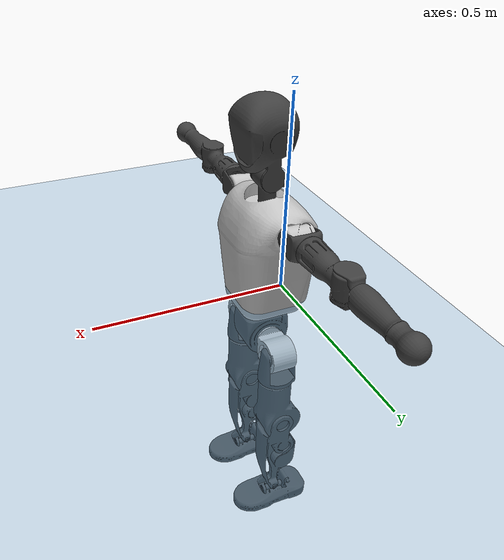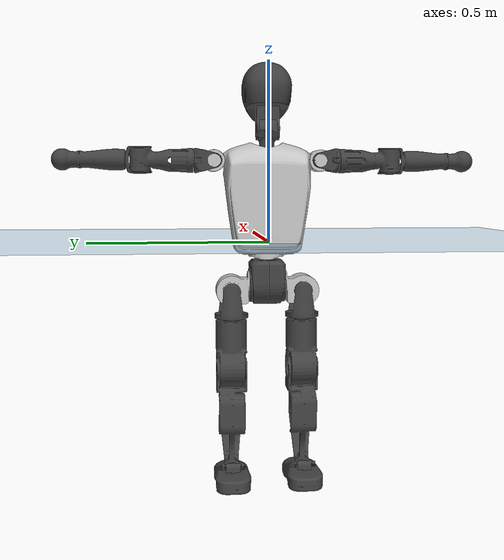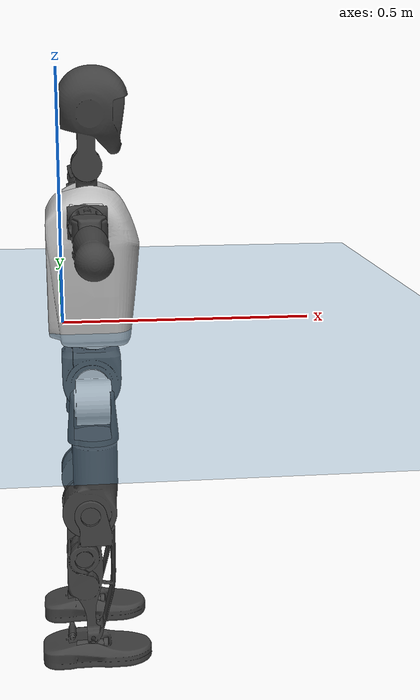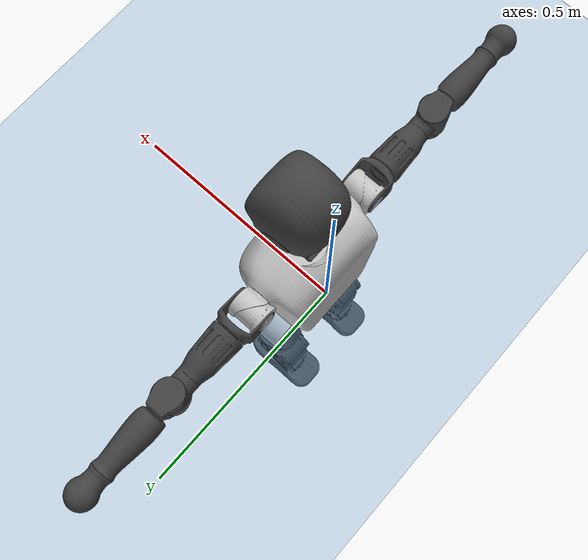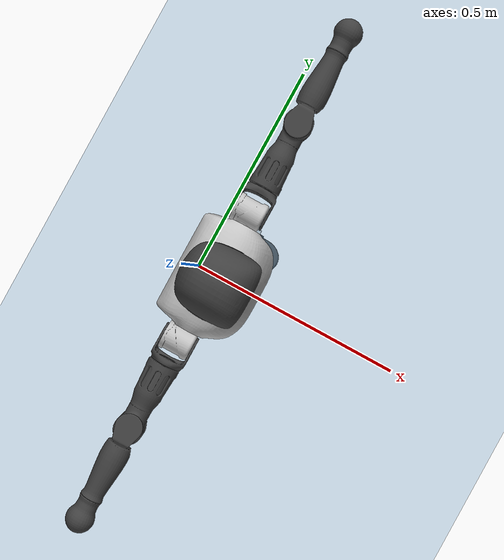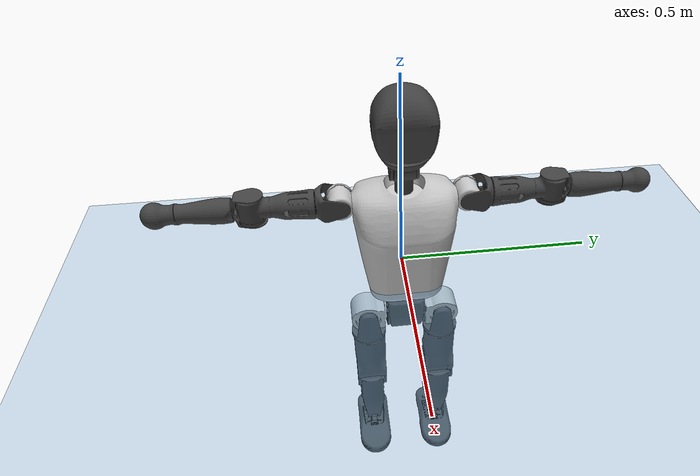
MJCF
<mujoco model="T1">
  <compiler angle="radian" assetdir="assets" balanceinertia="true" inertiafromgeom="false"/>

  <option timestep="0.005" density="1.2" viscosity="2e-05"/>

  <size nkey="1"/>

  <visual>
    <quality shadowsize="8192"/>
    <map shadowclip="0.5"/>
  </visual>

  <default>
    <default class="/">
      <joint armature="0.01" damping="0.01" frictionloss="0.1"/>
      <geom contype="0" conaffinity="0" group="1" solref="-1000 -80"/>
      <site size="0.01 0.005 0.005" group="5"/>
      <general forcelimited="true" biastype="affine" gainprm="25" biasprm="0 -25 -0.6"/>
      <default class="t1">
        <geom rgba="0.25 0.25 0.25 1"/>
        <default class="visual">
          <geom type="mesh" group="2"/>
        </default>
        <default class="collision">
          <geom group="3"/>
        </default>
        <default class="foot">
          <geom size="0.1115 0.05 0.015" type="box" condim="6" group="4" priority="1" solimp="0.015 1 0.015"/>
        </default>
        <default class="reward_collision_sphere">
          <geom group="5" rgba="1 0 0 1"/>
        </default>
      </default>
    </default>
  </default>

  <asset>
    <texture type="skybox" colorspace="auto" name="//unnamed_texture_0" builtin="gradient" rgb1="0.95 0.95 0.95" rgb2="0.95 0.95 0.95" width="100" height="600"/>
    <texture type="2d" colorspace="auto" name="texplane" builtin="checker" rgb1="0.345 0.575 0.748" rgb2="0.345 0.575 0.748" markrgb="1 1 1" width="512" height="512"/>
    <material name="MatPlane" class="/" texture="texplane" texuniform="true" texrepeat="2 2" specular="0.9"/>
    <mesh name="Trunk" class="/" file="Trunk.stl"/>
    <mesh name="H1" class="/" file="H1.stl"/>
    <mesh name="H2" class="/" file="H2.stl"/>
    <mesh name="AL1" class="/" file="AL1.stl"/>
    <mesh name="AL2" class="/" file="AL2.stl"/>
    <mesh name="AL3" class="/" file="AL3.stl"/>
    <mesh name="left_hand_link" class="/" file="left_hand_link.stl"/>
    <mesh name="AR1" class="/" file="AR1.stl"/>
    <mesh name="AR2" class="/" file="AR2.stl"/>
    <mesh name="AR3" class="/" file="AR3.stl"/>
    <mesh name="right_hand_link" class="/" file="right_hand_link.stl"/>
    <mesh name="Waist" class="/" file="Waist.stl"/>
    <mesh name="Hip_Pitch_Left" class="/" file="Hip_Pitch_Left.stl"/>
    <mesh name="Hip_Roll_Left" class="/" file="Hip_Roll_Left.stl"/>
    <mesh name="Hip_Yaw_Left" class="/" file="Hip_Yaw_Left.stl"/>
    <mesh name="Shank_Left" class="/" file="Shank_Left.stl"/>
    <mesh name="Ankle_Cross_Left" class="/" file="Ankle_Cross_Left.stl"/>
    <mesh name="left_foot_link" class="/" file="left_foot_link.stl"/>
    <mesh name="Hip_Pitch_Right" class="/" file="Hip_Pitch_Right.stl"/>
    <mesh name="Hip_Roll_Right" class="/" file="Hip_Roll_Right.stl"/>
    <mesh name="Hip_Yaw_Right" class="/" file="Hip_Yaw_Right.stl"/>
    <mesh name="Shank_Right" class="/" file="Shank_Right.stl"/>
    <mesh name="Ankle_Cross_Right" class="/" file="Ankle_Cross_Right.stl"/>
    <mesh name="right_foot_link" class="/" file="right_foot_link.stl"/>
  </asset>

  <worldbody>
    <geom name="floor" class="/" size="100 100 0.125" type="plane" group="0" material="MatPlane"/>
    <light name="toplight_shadow" class="/" pos="0 0 5" dir="0.0990148 0.0990148 -0.990148" type="directional" ambient="0.04 0.04 0.04" diffuse="0.55 0.55 0.55" specular="0.12 0.12 0.12"/>
    <light name="toplight_fill" class="/" pos="0 0 5" dir="0.0990148 0.0990148 -0.990148" type="directional" castshadow="false" ambient="0.04 0.04 0.04" diffuse="0.3 0.3 0.3" specular="0.08 0.08 0.08"/>
    <body name="trunk" childclass="t1" pos="6.3715e-05 0.000691207 -0.000304596" quat="1 0.000352847 -0.000151345 4.59355e-05">
      <inertial pos="0.0466936 -0.000177778 0.10878" quat="0.999951 -0.00204195 -0.00918267 0.00318389" mass="10.2229" diaginertia="0.0435528 0.0641919 0.0670409"/>
      <joint name="//unnamed_joint_0" type="free" armature="0" damping="0" frictionloss="0"/>
      <geom name="//unnamed_geom_1" class="visual" rgba="0.76 0.76 0.76 1" mesh="Trunk"/>
      <geom name="//unnamed_geom_2" class="collision" size="0.0714811 0.0953081 0.142962" pos="0.0515851 0 0.124412" type="box"/>
      <geom name="//unnamed_geom_3" class="reward_collision_sphere" size="0.109604" pos="0.0515851 0 0.103676"/>
      <geom name="//unnamed_geom_4" class="reward_collision_sphere" size="0.0142962" pos="0.0515851 0.0818318 0"/>
      <geom name="//unnamed_geom_5" class="reward_collision_sphere" size="0.0142962" pos="0.0515851 -0.0818318 0"/>
      <geom name="//unnamed_geom_6" class="reward_collision_sphere" size="0.0142962" pos="0.0515851 0.103012 0.186617"/>
      <geom name="//unnamed_geom_7" class="reward_collision_sphere" size="0.0142962" pos="0.0515851 -0.103012 0.186617"/>
      <site name="imu" pos="-0.00412775 0.000156281 0.00421935" size="0.00953081"/>
      <camera name="track" pos="0 -1.92545 0" quat="0.707107 0.707107 0 0" mode="trackcom"/>
      <camera name="ego_camera" pos="0.10489 0 0.435441" quat="-0.5 -0.5 0.5 0.5"/>
      <body name="H1" pos="0.0536683 -0.000308285 0.251503" quat="1 -3.44915e-05 -4.59088e-05 -1.75549e-05">
        <inertial pos="-0.000870403 -0.00134265 0.0595106" quat="0.763614 -0.012553 0.0024079 0.645547" mass="0.384334" diaginertia="0.000114795 0.000185749 0.000179112"/>
        <joint name="AAHead_yaw" pos="0 0 0" axis="-0.00121039 0.00180488 0.999998" range="-1.58757 1.56694" armature="0.00954725" damping="0.00901882" frictionloss="0.0946299"/>
        <geom name="//unnamed_geom_8" class="visual" mesh="H1"/>
        <body name="H2" pos="0.000283363 -0.00107239 0.0636257" quat="1 -5.899e-06 3.51404e-06 -7.14982e-05">
          <inertial pos="0.00542498 0.00117119 0.101736" quat="0.988133 0.106784 -0.0772702 -0.0788631" mass="0.541009" diaginertia="0.000952144 0.00157497 0.00205542"/>
          <joint name="Head_pitch" pos="0 0 0" axis="-2.22144e-05 -1 -0.000844264" range="-1.22548 0.34153" armature="0.00913386" damping="0.0072581" frictionloss="0.0957687"/>
          <geom name="//unnamed_geom_9" class="visual" mesh="H2"/>
          <geom name="//unnamed_geom_10" class="collision" size="0.0762465" pos="0.00859752 0 0.114044"/>
          <geom name="//unnamed_geom_11" class="reward_collision_sphere" size="0.0857773" pos="0.017195 0 0.103676"/>
        </body>
      </body>
      <body name="AL1" pos="0.050721 0.102866 0.227163" quat="1 6.75552e-05 0.000358114 0.000220513">
        <inertial pos="0.000300983 0.0428535 0.00019503" quat="0.503987 0.495919 -0.504246 0.495778" mass="0.463468" diaginertia="0.000647568 0.00107545 0.000355741"/>
        <joint name="Left_Shoulder_Pitch" pos="0 0 0" axis="-0.000790052 0.999997 0.00223389" range="-3.29257 1.22622" armature="0.00946488" damping="0.0052479" frictionloss="0.091759"/>
        <geom name="//unnamed_geom_12" class="visual" rgba="0.76 0.76 0.76 1" mesh="AL1"/>
        <body name="AL2" pos="0.00115611 0.045785 0.000241365" quat="1 -2.27005e-05 4.10971e-05 -9.37678e-06">
          <inertial pos="0.00344694 0.0363248 0.000391539" quat="0.48785 0.512685 -0.488211 0.510691" mass="0.13737" diaginertia="0.000186249 0.00028422 0.000211314"/>
          <joint name="Left_Shoulder_Roll" pos="0 0 0" axis="-1 -8.55559e-05 0.000111537" range="-1.58466 1.73756" armature="0.00964862" damping="0.00399566" frictionloss="0.0953148"/>
          <geom name="//unnamed_geom_13" class="visual" mesh="AL2"/>
          <body name="AL3" pos="0.000750786 0.058467 0.000161811" quat="1 -5.63469e-05 7.19097e-05 4.48501e-05">
            <inertial pos="-0.000592378 0.0820371 -0.000149922" quat="0.706929 0.707274 -0.00270236 -0.00292099" mass="0.890528" diaginertia="0.0060602 0.0106707 0.000757202"/>
            <joint name="Left_Elbow_Pitch" pos="0 0 0" axis="0.00245933 -0.999997 0.000970833" stiffness="0.00166675" range="-2.28058 2.27542" armature="0.00990494" damping="0.00874479" frictionloss="0.0956097"/>
            <geom name="//unnamed_geom_14" class="visual" mesh="AL3"/>
            <geom name="//unnamed_geom_15" class="collision" size="0.0285924 0.0714811" pos="0 0.0481364 0" quat="0.707105 0.707108 0 0" type="cylinder"/>
            <geom name="//unnamed_geom_16" class="reward_collision_sphere" size="0.0343109"/>
            <body name="left_hand_link" pos="-9.71311e-05 0.142538 0.00166123" quat="1 2.17914e-05 1.84941e-05 -9.56632e-05">
              <inertial pos="-0.000313115 0.105157 0.000648583" quat="0.709161 0.705045 -0.00010007 -0.00165285" mass="0.282281" diaginertia="0.00383884 0.00668863 0.000256546"/>
              <joint name="Left_Elbow_Yaw" pos="0 0 0" axis="0.00186809 -4.7559e-05 0.999998" range="-2.44171 -0.00794625" armature="0.00943286" damping="0.00943473" frictionloss="0.0961061"/>
              <geom name="//unnamed_geom_17" class="visual" mesh="left_hand_link"/>
              <geom name="//unnamed_geom_18" class="collision" size="0.0285924 0.0833946" pos="0 0.125155 0" quat="0.707105 0.707108 0 0" type="cylinder"/>
              <geom name="//unnamed_geom_19" class="reward_collision_sphere" size="0.047654"/>
              <geom name="//unnamed_geom_20" class="reward_collision_sphere" size="0.0333578" pos="0 0.1059 0"/>
              <geom name="//unnamed_geom_21" class="reward_collision_sphere" size="0.0333578" pos="0 0.206986 0"/>
            </body>
          </body>
        </body>
      </body>
      <body name="AR1" pos="0.0488203 -0.101163 0.227507" quat="1 1.1286e-05 0.000412292 1.22471e-05">
        <inertial pos="-0.000207747 -0.0443859 -0.000506315" quat="0.503241 0.496377 -0.507339 0.492915" mass="0.462502" diaginertia="0.000650476 0.0010791 0.000351327"/>
        <joint name="Right_Shoulder_Pitch" pos="0 0 0" axis="0.00064615 -1 0.000264694" range="-1.22289 3.32395" armature="0.00934945" damping="0.00583239" frictionloss="0.0980431"/>
        <geom name="//unnamed_geom_22" class="visual" rgba="0.76 0.76 0.76 1" mesh="AR1"/>
        <body name="AR2" pos="-0.000237222 -0.0453737 0.000789167" quat="1 5.42626e-05 7.65184e-05 2.86938e-05">
          <inertial pos="0.00405834 -0.0368775 -4.50983e-05" quat="0.513458 0.487093 -0.510525 0.488329" mass="0.138571" diaginertia="0.000188229 0.000285161 0.000210162"/>
          <joint name="Right_Shoulder_Roll" pos="0 0 0" axis="-0.999977 0.00399897 -0.00543065" stiffness="0.00050715" range="-1.74159 1.57102" armature="0.00961047" damping="0.0050214" frictionloss="0.0989817"/>
          <geom name="//unnamed_geom_23" class="visual" mesh="AR2"/>
          <body name="AR3" pos="-0.00110059 -0.0584599 -0.00123428" quat="1 -1.29894e-05 -1.39833e-05 -6.63403e-05">
            <inertial pos="-0.000600374 -0.0821387 0.000311243" quat="0.706958 0.707254 0.00104252 -0.000529104" mass="0.881566" diaginertia="0.00603228 0.0105076 0.00073991"/>
            <joint name="Right_Elbow_Pitch" pos="0 0 0" axis="-0.00125197 0.999998 -0.00140665" range="-2.26657 2.28529" armature="0.00954978" damping="0.00908025" frictionloss="0.0910805"/>
            <geom name="//unnamed_geom_24" class="visual" mesh="AR3"/>
            <geom name="//unnamed_geom_25" class="collision" size="0.0285924 0.0714811" pos="0 -0.0481364 0" quat="0.707105 0.707108 0 0" type="cylinder"/>
            <geom name="//unnamed_geom_26" class="reward_collision_sphere" size="0.0343109"/>
            <body name="right_hand_link" pos="-0.000333967 -0.141342 -0.000280264" quat="1 0.000354208 -5.34941e-05 0.000123401">
              <inertial pos="-0.000460777 -0.104854 0.00105375" quat="0.706433 0.70778 0.000451876 -8.05961e-05" mass="0.284226" diaginertia="0.00387073 0.00675014 0.000259247"/>
              <joint name="Right_Elbow_Yaw" pos="0 0 0" axis="0.0057287 0.0012199 0.999983" range="0.00358377 2.41958" armature="0.00937532" damping="0.00439423" frictionloss="0.0915303"/>
              <geom name="//unnamed_geom_27" class="visual" mesh="right_hand_link"/>
              <geom name="//unnamed_geom_28" class="collision" size="0.0285924 0.0833946" pos="0 -0.125155 0" quat="0.707105 0.707108 0 0" type="cylinder"/>
              <geom name="//unnamed_geom_29" class="reward_collision_sphere" size="0.047654"/>
              <geom name="//unnamed_geom_30" class="reward_collision_sphere" size="0.0333578" pos="0 -0.1059 0"/>
              <geom name="//unnamed_geom_31" class="reward_collision_sphere" size="0.0333578" pos="0 -0.206986 0"/>
            </body>
          </body>
        </body>
      </body>
      <body name="Waist" pos="0.0542262 -0.000474877 -0.11908" quat="1 4.03022e-05 -2.68784e-06 5.03315e-05">
        <inertial pos="0.0019985 -0.000914186 0.00801986" quat="0.983886 0.000165597 -0.178776 0.0028222" mass="2.21573" diaginertia="0.00250471 0.00435928 0.00563815"/>
        <joint name="Waist" pos="0 0 0" axis="8.14294e-05 3.39905e-05 1" stiffness="0.0015407" range="-1.56312 1.57481" armature="0.00947427" damping="0.00919321" frictionloss="0.0937241"/>
        <geom name="//unnamed_geom_32" class="visual" mesh="Waist"/>
        <body name="Hip_Pitch_Left" pos="7.33747e-05 0.101042 -7.9899e-05" quat="1 -0.000548692 4.16835e-05 -4.09167e-05">
          <inertial pos="0.000881903 -0.00651534 -0.0186078" quat="0.975429 0.219685 0.0165458 0.00170349" mass="0.874464" diaginertia="0.000847441 0.00120265 0.00148723"/>
          <joint name="Left_Hip_Pitch" pos="0 0 0" axis="-0.00582151 0.999981 0.00204253" range="-1.80506 1.57757" armature="0.00919985" damping="0.010434" frictionloss="0.0953068"/>
          <geom name="//unnamed_geom_33" class="visual" rgba="0.76 0.76 0.76 1" mesh="Hip_Pitch_Left"/>
          <body name="Hip_Roll_Left" pos="0.000420053 0.000810137 -0.0215271" quat="1 0.000285394 0.000421671 3.77253e-05">
            <inertial pos="0.00174495 5.03142e-05 -0.0554162" quat="0.706831 -0.00520226 -0.0057624 0.70734" mass="0.329272" diaginertia="0.000812766 0.00124349 0.000612826"/>
            <joint name="Left_Hip_Roll" pos="0 0 0" axis="-1 -0.000182611 -7.32911e-06" range="-1.57675 0.197422" armature="0.0098373" damping="0.00740115" frictionloss="0.093163"/>
            <geom name="//unnamed_geom_34" class="visual" mesh="Hip_Roll_Left"/>
            <geom name="//unnamed_geom_35" class="reward_collision_sphere" size="0.0524195"/>
            <body name="Hip_Yaw_Left" pos="0.000694387 -1.90948e-05 -0.0849118" quat="1 -3.65322e-05 -0.000151494 6.54056e-05">
              <inertial pos="-0.00629268 0.000192171 -0.0928145" quat="0.697212 -0.0347711 -0.0309541 0.715352" mass="1.88615" diaginertia="0.0120111 0.0208855 0.00310703"/>
              <joint name="Left_Hip_Yaw" pos="0 0 0" axis="0.00104989 0.00102465 -0.999999" range="-0.989531 1.00344" armature="0.00950981" damping="0.00576295" frictionloss="0.0941552"/>
              <geom name="//unnamed_geom_36" class="visual" mesh="Hip_Yaw_Left"/>
              <geom name="//unnamed_geom_37" class="collision" size="0.047654 0.0762465" type="cylinder"/>
              <body name="Shank_Left" pos="-0.0110466 0.000475192 -0.139315" quat="1 9.70471e-05 -0.000131968 0.000152455">
                <inertial pos="-0.00501302 0.0010417 -0.128713" quat="0.997511 0.00357943 -0.0228839 0.0665922" mass="1.46663" diaginertia="0.0161342 0.0282107 0.00220209"/>
                <joint name="Left_Knee_Pitch" pos="0 0 0" axis="-0.00148565 0.999999 0.000134892" stiffness="0.000337146" range="0.00134407 2.35522" armature="0.00944535" damping="0.0130537" frictionloss="0.0931338"/>
                <geom name="//unnamed_geom_38" class="visual" mesh="Shank_Left"/>
                <geom name="//unnamed_geom_39" class="collision" size="0.047654 0.0714811" pos="0 0 -0.124412" type="cylinder"/>
                <geom name="//unnamed_geom_40" class="reward_collision_sphere" size="0.0619503"/>
                <body name="Ankle_Cross_Left" pos="-0.00120522 -0.000750649 -0.289822" quat="1 -2.61559e-06 -2.11715e-05 1.7122e-05">
                  <inertial pos="-0.00245465 -0.000493867 -0.00830363" quat="0.445971 0.548621 0.551025 0.443278" mass="0.0632648" diaginertia="1.36051e-05 2.11471e-05 1.34589e-05"/>
                  <joint name="Left_Ankle_Pitch" pos="0 0 0" axis="-0.00265692 0.999996 -0.000541431" range="-0.865319 0.353737" armature="0.00964441" damping="0.0101989" frictionloss="0.0941087"/>
                  <geom name="//unnamed_geom_41" class="visual" mesh="Ankle_Cross_Left"/>
                  <body name="left_foot_link" pos="-2.78632e-05 -0.000119172 -0.0126771" quat="1 -0.000149501 -2.76002e-05 8.86013e-05">
                    <inertial pos="-0.00038518 0.000448511 -0.0087616" quat="0.000120838 0.621752 0.00190897 0.783211" mass="0.587745" diaginertia="0.00125224 0.00196997 0.0026093"/>
                    <joint name="Left_Ankle_Roll" pos="0 0 0" axis="-0.999998 -0.00196626 0.000989592" range="-0.446057 0.443083" armature="0.00964918" damping="0.0150371" frictionloss="0.0942918"/>
                    <geom name="//unnamed_geom_42" class="visual" mesh="left_foot_link"/>
                    <geom name="left_foot" class="foot" size="0.107646 0.0475859 0.0147884" pos="0.00859752 0 -0.0155515"/>
                    <geom name="//unnamed_geom_44" class="reward_collision_sphere" size="0.0495602" pos="0.00859752 0 -0.0155515"/>
                    <geom name="//unnamed_geom_45" class="reward_collision_sphere" size="0.0285924" pos="0.0816764 -0.0221427 -0.0155515"/>
                    <geom name="//unnamed_geom_46" class="reward_collision_sphere" size="0.0285924" pos="-0.0601826 -0.0221427 -0.0155515"/>
                    <site name="left_foot" class="foot" pos="0.00859752 0 -0.0155515" size="0.00953081"/>
                  </body>
                </body>
              </body>
            </body>
          </body>
        </body>
        <body name="Hip_Pitch_Right" pos="-1.21997e-05 -0.101954 0.000761345" quat="1 -0.000263727 2.48078e-05 0.000627315">
          <inertial pos="0.00013355 0.00631332 -0.0185827" quat="0.973481 -0.228369 0.0115267 -0.00708544" mass="0.872973" diaginertia="0.000847217 0.00120426 0.00149245"/>
          <joint name="Right_Hip_Pitch" pos="0 0 0" axis="-0.00196732 -0.999992 0.00339546" stiffness="0.00220676" range="-1.55444 1.79373" armature="0.00983042" damping="0.00596809" frictionloss="0.0970534"/>
          <geom name="//unnamed_geom_47" class="visual" rgba="0.76 0.76 0.76 1" mesh="Hip_Pitch_Right"/>
          <body name="Hip_Roll_Right" pos="0.000215931 0.00101434 -0.0199496" quat="1 -0.00034098 4.04191e-05 -0.000319198">
            <inertial pos="0.00109345 0.00036722 -0.0559531" quat="0.705451 -0.00617565 -0.0060732 0.708706" mass="0.330377" diaginertia="0.000807992 0.00125786 0.000618429"/>
            <joint name="Right_Hip_Roll" pos="0 0 0" axis="-0.999989 0.00285027 0.0036466" range="-0.196115 1.56818" armature="0.00928732" damping="0.00809335" frictionloss="0.0953533"/>
            <geom name="//unnamed_geom_48" class="visual" mesh="Hip_Roll_Right"/>
            <geom name="//unnamed_geom_49" class="reward_collision_sphere" size="0.0524195"/>
            <body name="Hip_Yaw_Right" pos="0.000614955 0.00101986 -0.0853391" quat="1 1.76066e-05 -6.81005e-05 -0.000118272">
              <inertial pos="-0.00670307 0.000412875 -0.0921292" quat="0.714512 -0.0314988 -0.033601 0.698106" mass="1.85142" diaginertia="0.0120126 0.0208421 0.00310869"/>
              <joint name="Right_Hip_Yaw" pos="0 0 0" axis="0.00138776 0.000865535 -0.999999" range="-1.01527 1.0141" armature="0.00914757" damping="0.00591849" frictionloss="0.0957686"/>
              <geom name="//unnamed_geom_50" class="visual" mesh="Hip_Yaw_Right"/>
              <geom name="//unnamed_geom_51" class="collision" size="0.047654 0.0762465" type="cylinder"/>
              <body name="Shank_Right" pos="-0.0128156 -0.000508314 -0.139211" quat="1 4.51079e-05 -5.69911e-05 7.36403e-06">
                <inertial pos="-0.00519987 -0.00099801 -0.126857" quat="0.999363 -0.00278415 -0.0203239 -0.0292145" mass="1.56275" diaginertia="0.0167101 0.0290352 0.00238027"/>
                <joint name="Right_Knee_Pitch" pos="0 0 0" axis="-0.00357692 -0.999979 -0.00547878" range="-2.35176 0.00680765" armature="0.00941501" damping="0.00453576" frictionloss="0.0958905"/>
                <geom name="//unnamed_geom_52" class="visual" mesh="Shank_Right"/>
                <geom name="//unnamed_geom_53" class="collision" size="0.047654 0.0714811" pos="0 0 -0.124412" type="cylinder"/>
                <geom name="//unnamed_geom_54" class="reward_collision_sphere" size="0.0619503"/>
                <body name="Ankle_Cross_Right" pos="-0.00085354 -0.000363477 -0.28991" quat="1 -0.000134799 -0.000301461 -0.000183413">
                  <inertial pos="-0.00307568 0.00019291 -0.00897072" quat="0.44266 0.554191 0.549166 0.441974" mass="0.0630013" diaginertia="1.36928e-05 2.12253e-05 1.36647e-05"/>
                  <joint name="Right_Ankle_Pitch" pos="0 0 0" axis="-0.00129756 -0.999998 -0.0012206" range="-0.342187 0.86277" armature="0.00941137" damping="0.00606799" frictionloss="0.0944874"/>
                  <geom name="//unnamed_geom_55" class="visual" mesh="Ankle_Cross_Right"/>
                  <body name="right_foot_link" pos="-0.000219432 -0.00107957 -0.011762" quat="1 -2.51239e-05 0.000121207 -7.82892e-05">
                    <inertial pos="0.000210882 0.000191477 -0.00895646" quat="0.00224471 0.620883 -0.000494054 0.7839" mass="0.592746" diaginertia="0.00126406 0.00197193 0.00265001"/>
                    <joint name="Right_Ankle_Roll" pos="0 0 0" axis="-0.999988 -0.00466159 -0.00120946" range="-0.421997 0.441886" armature="0.00938231" damping="0.0082595" frictionloss="0.0992726"/>
                    <geom name="//unnamed_geom_56" class="visual" mesh="right_foot_link"/>
                    <geom name="right_foot" class="foot" size="0.102194 0.0485645 0.0149177" pos="0.00859752 0 -0.0155515"/>
                    <geom name="//unnamed_geom_58" class="reward_collision_sphere" size="0.0381232"/>
                    <geom name="//unnamed_geom_59" class="reward_collision_sphere" size="0.0285924" pos="0.00859752 0 -0.0155515"/>
                    <geom name="//unnamed_geom_60" class="reward_collision_sphere" size="0.0285924" pos="0.0816764 0.0221427 -0.0155515"/>
                    <geom name="//unnamed_geom_61" class="reward_collision_sphere" size="0.0285924" pos="-0.0601826 0.0221427 -0.0155515"/>
                    <site name="right_foot" class="foot" pos="0.00859752 0 -0.0155515" size="0.00953081"/>
                  </body>
                </body>
              </body>
            </body>
          </body>
        </body>
      </body>
    </body>
  </worldbody>

  <contact>
    <pair class="/" geom1="floor" geom2="left_foot" name="//unnamed_contact_0"/>
    <pair class="/" geom1="floor" geom2="right_foot" name="//unnamed_contact_1"/>
  </contact>

  <actuator>
    <general name="AAHead_yaw" class="/" joint="AAHead_yaw" forcerange="-6.88364 6.88364" gainprm="23.3716" biasprm="0 -23.3716 -0.551972"/>
    <general name="Head_pitch" class="/" joint="Head_pitch" forcerange="-6.45678 6.45678" gainprm="23.3716" biasprm="0 -23.3716 -0.551972"/>
    <general name="Left_Shoulder_Pitch" class="/" joint="Left_Shoulder_Pitch" forcerange="-16.7581 16.7581" gainprm="23.3716" biasprm="0 -23.3716 -0.551972"/>
    <general name="Left_Shoulder_Roll" class="/" joint="Left_Shoulder_Roll" forcerange="-16.7736 16.7736" gainprm="23.3716" biasprm="0 -23.3716 -0.551972"/>
    <general name="Left_Elbow_Pitch" class="/" joint="Left_Elbow_Pitch" forcerange="-17.3463 17.3463" gainprm="23.3716" biasprm="0 -23.3716 -0.551972"/>
    <general name="Left_Elbow_Yaw" class="/" joint="Left_Elbow_Yaw" forcerange="-17.2949 17.2949" gainprm="23.3716" biasprm="0 -23.3716 -0.551972"/>
    <general name="Right_Shoulder_Pitch" class="/" joint="Right_Shoulder_Pitch" forcerange="-17.3163 17.3163" gainprm="23.3716" biasprm="0 -23.3716 -0.551972"/>
    <general name="Right_Shoulder_Roll" class="/" joint="Right_Shoulder_Roll" forcerange="-17.0785 17.0785" gainprm="23.3716" biasprm="0 -23.3716 -0.551972"/>
    <general name="Right_Elbow_Pitch" class="/" joint="Right_Elbow_Pitch" forcerange="-17.5138 17.5138" gainprm="23.3716" biasprm="0 -23.3716 -0.551972"/>
    <general name="Right_Elbow_Yaw" class="/" joint="Right_Elbow_Yaw" forcerange="-16.7659 16.7659" gainprm="23.3716" biasprm="0 -23.3716 -0.551972"/>
    <general name="Waist" class="/" joint="Waist" forcerange="-29.1541 29.1541" gainprm="23.3716" biasprm="0 -23.3716 -0.551972"/>
    <general name="Left_Hip_Pitch" class="/" joint="Left_Hip_Pitch" forcerange="-42.5324 42.5324" gainprm="23.3716" biasprm="0 -23.3716 -0.551972"/>
    <general name="Left_Hip_Roll" class="/" joint="Left_Hip_Roll" forcerange="-28.5067 28.5067" gainprm="23.3716" biasprm="0 -23.3716 -0.551972"/>
    <general name="Left_Hip_Yaw" class="/" joint="Left_Hip_Yaw" forcerange="-28.1263 28.1263" gainprm="23.3716" biasprm="0 -23.3716 -0.551972"/>
    <general name="Left_Knee_Pitch" class="/" joint="Left_Knee_Pitch" forcerange="-57.7731 57.7731" gainprm="23.3716" biasprm="0 -23.3716 -0.551972"/>
    <general name="Left_Ankle_Pitch" class="/" joint="Left_Ankle_Pitch" forcerange="-19.453 19.453" gainprm="23.3716" biasprm="0 -23.3716 -0.551972"/>
    <general name="Left_Ankle_Roll" class="/" joint="Left_Ankle_Roll" forcerange="-13.8425 13.8425" gainprm="23.3716" biasprm="0 -23.3716 -0.551972"/>
    <general name="Right_Hip_Pitch" class="/" joint="Right_Hip_Pitch" forcerange="-43.0044 43.0044" gainprm="23.3716" biasprm="0 -23.3716 -0.551972"/>
    <general name="Right_Hip_Roll" class="/" joint="Right_Hip_Roll" forcerange="-29.1545 29.1545" gainprm="23.3716" biasprm="0 -23.3716 -0.551972"/>
    <general name="Right_Hip_Yaw" class="/" joint="Right_Hip_Yaw" forcerange="-28.8314 28.8314" gainprm="23.3716" biasprm="0 -23.3716 -0.551972"/>
    <general name="Right_Knee_Pitch" class="/" joint="Right_Knee_Pitch" forcerange="-57.7263 57.7263" gainprm="23.3716" biasprm="0 -23.3716 -0.551972"/>
    <general name="Right_Ankle_Pitch" class="/" joint="Right_Ankle_Pitch" forcerange="-19.174 19.174" gainprm="23.3716" biasprm="0 -23.3716 -0.551972"/>
    <general name="Right_Ankle_Roll" class="/" joint="Right_Ankle_Roll" forcerange="-14.3278 14.3278" gainprm="23.3716" biasprm="0 -23.3716 -0.551972"/>
  </actuator>

  <sensor>
    <gyro site="imu" name="imu_angular_velocity"/>
    <velocimeter site="imu" name="imu_linear_velocity"/>
    <framelinvel objtype="site" objname="left_foot" name="left_foot_global_linear_velocity"/>
    <framelinvel objtype="site" objname="right_foot" name="right_foot_global_linear_velocity"/>
  </sensor>

  <keyframe>
    <key name="home" qpos="0 0 0.6385 1 0 0 0 0 0 0 1.4 0 -0.4 0 -1.4 0 0.4 0 -0.4 0 0 0.8 -0.4 0 0.4 0 0 -0.8 0.4 0"/>
  </keyframe>
</mujoco>
